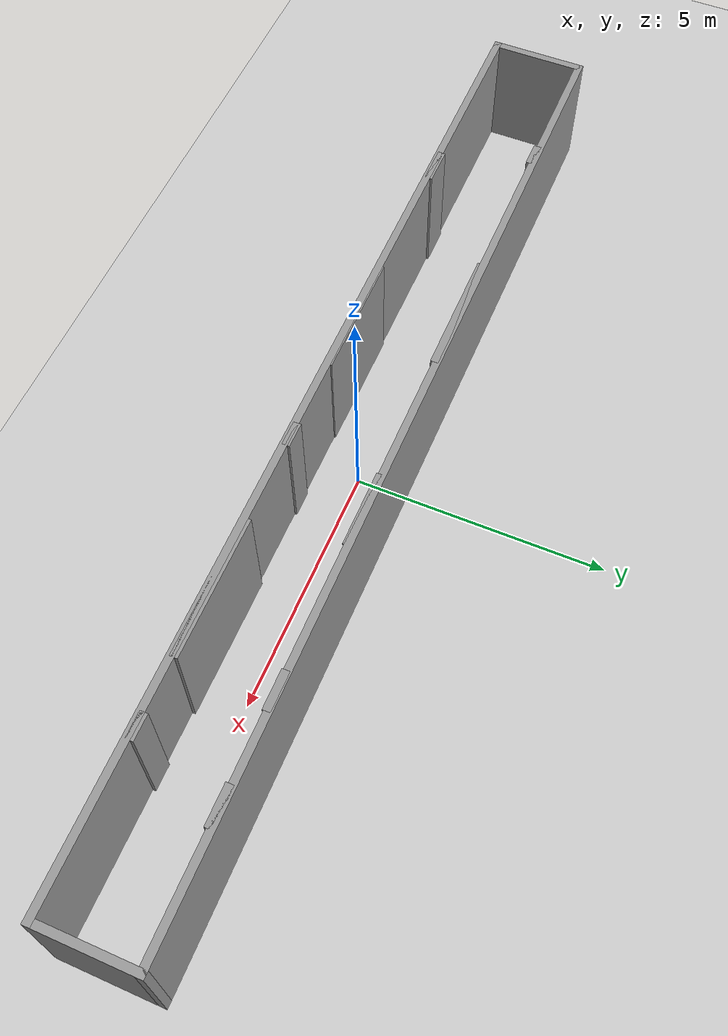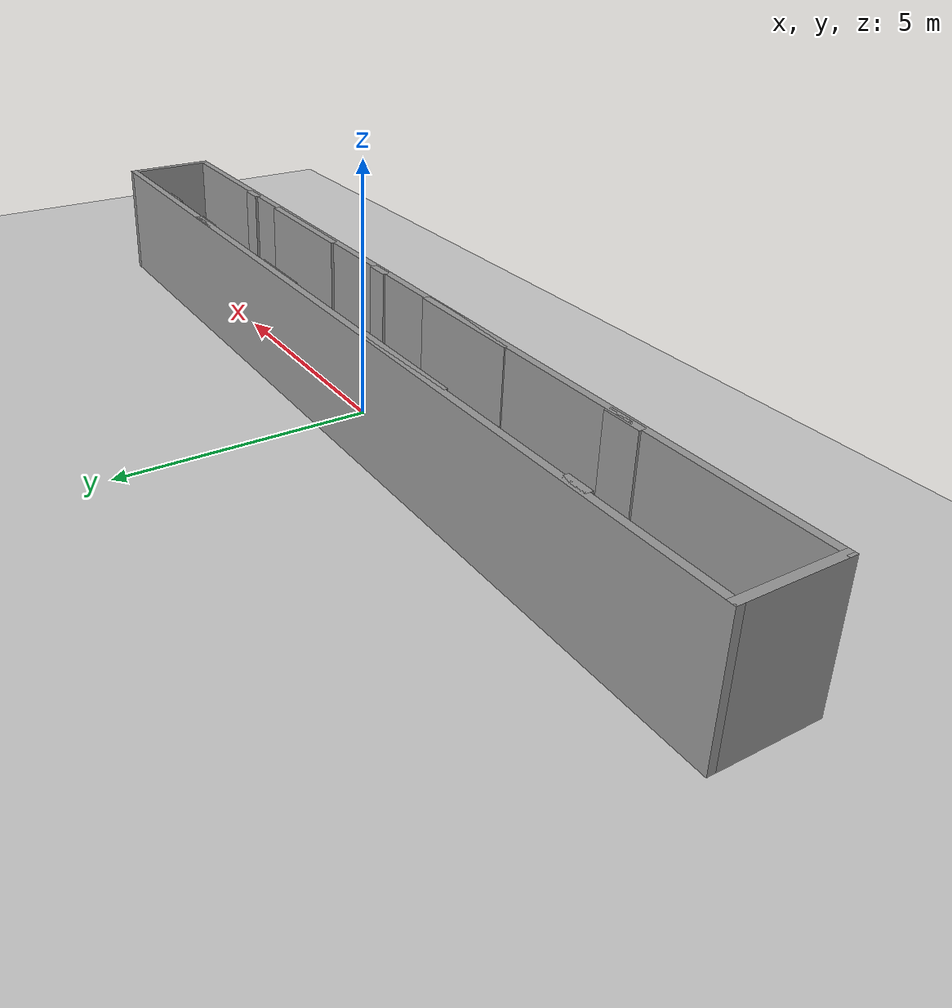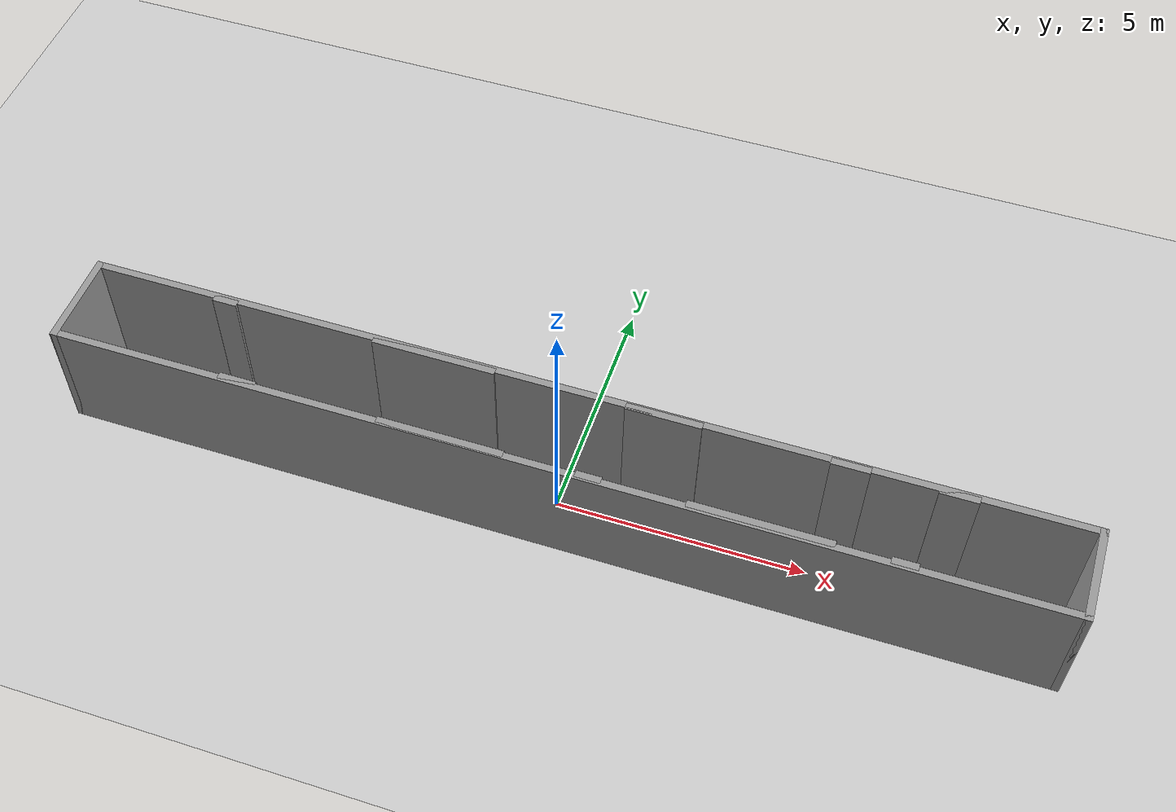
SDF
<sdf version="1.6">
 <world name="default">
  <light name="sun" type="directional">
   <pose>0 0 10 0 -0 0</pose>
   <diffuse>0.8 0.8 0.8 1</diffuse>
   <specular>0.2 0.2 0.2 1</specular>
   <attenuation>
    <range>1000</range>
    <constant>0.9</constant>
    <linear>0.01</linear>
    <quadratic>0.001</quadratic>
   </attenuation>
   <direction>-0.5 0.1 -0.9</direction>
  </light>
  <model name="ground_plane">
   <static>1</static>
   <link name="link">
    <collision name="collision">
     <geometry><plane><normal>0 0 1</normal><size>100 100</size></plane></geometry>
     <surface><friction><ode><mu>100</mu><mu2>50</mu2></ode></friction></surface>
    </collision>
    <visual name="visual">
     <cast_shadows>0</cast_shadows>
     <geometry><plane><normal>0 0 1</normal><size>100 100</size></plane></geometry>
     <material>
      <script><uri>file://media/materials/scripts/gazebo.material</uri><name>Gazebo/Grey</name></script>
     </material>
    </visual>
   </link>
  </model>
  <gravity>0 0 -9.8</gravity>
  <magnetic_field>6e-06 2.3e-05 -4.2e-05</magnetic_field>
  <atmosphere type="adiabatic"/>
  <physics name="default_physics" default="0" type="ode">
   <max_step_size>0.001</max_step_size>
   <real_time_factor>1</real_time_factor>
   <real_time_update_rate>1000</real_time_update_rate>
  </physics>
  <scene><ambient>0.4 0.4 0.4 1</ambient><background>0.7 0.7 0.7 1</background><shadows>1</shadows></scene>
  <spherical_coordinates>
   <surface_model>EARTH_WGS84</surface_model>
   <latitude_deg>0</latitude_deg>
   <longitude_deg>0</longitude_deg>
   <elevation>0</elevation>
   <heading_deg>0</heading_deg>
  </spherical_coordinates>
  <model name="lsq_w2m">
   <link name="Wall_27">
    <collision name="Wall_27_Collision">
     <geometry><box><size>2 0.15 2.5</size></box></geometry>
     <pose>0 0 1.25 0 -0 0</pose>
    </collision>
    <visual name="Wall_27_Visual">
     <pose>0 0 1.25 0 -0 0</pose>
     <geometry><box><size>2 0.15 2.5</size></box></geometry>
     <material>
      <script><uri>file://media/materials/scripts/gazebo.material</uri><name>Gazebo/Grey</name></script>
      <ambient>1 1 1 1</ambient>
     </material>
     <meta><layer>0</layer></meta>
    </visual>
    <pose>-9.925 0 0 0 -0 -1.5708</pose>
   </link>
   <link name="Wall_28">
    <collision name="Wall_28_Collision">
     <geometry><box><size>20 0.15 2.5</size></box></geometry>
     <pose>0 0 1.25 0 -0 0</pose>
    </collision>
    <visual name="Wall_28_Visual">
     <pose>0 0 1.25 0 -0 0</pose>
     <geometry><box><size>20 0.15 2.5</size></box></geometry>
     <material>
      <script><uri>file://media/materials/scripts/gazebo.material</uri><name>Gazebo/Grey</name></script>
      <ambient>1 1 1 1</ambient>
     </material>
     <meta><layer>0</layer></meta>
    </visual>
    <pose>0 -0.925 0 0 -0 0</pose>
   </link>
   <link name="Wall_29">
    <collision name="Wall_29_Collision">
     <geometry><box><size>2 0.15 2.5</size></box></geometry>
     <pose>0 0 1.25 0 -0 0</pose>
    </collision>
    <visual name="Wall_29_Visual">
     <pose>0 0 1.25 0 -0 0</pose>
     <geometry><box><size>2 0.15 2.5</size></box></geometry>
     <material>
      <script><uri>file://media/materials/scripts/gazebo.material</uri><name>Gazebo/Grey</name></script>
      <ambient>1 1 1 1</ambient>
     </material>
     <meta><layer>0</layer></meta>
    </visual>
    <pose>9.925 0 0 0 -0 1.5708</pose>
   </link>
   <link name="Wall_30">
    <collision name="Wall_30_Collision">
     <geometry><box><size>20 0.15 2.5</size></box></geometry>
     <pose>0 0 1.25 0 -0 0</pose>
    </collision>
    <visual name="Wall_30_Visual">
     <pose>0 0 1.25 0 -0 0</pose>
     <geometry><box><size>20 0.15 2.5</size></box></geometry>
     <material>
      <script><uri>file://media/materials/scripts/gazebo.material</uri><name>Gazebo/Grey</name></script>
      <ambient>1 1 1 1</ambient>
     </material>
     <meta><layer>0</layer></meta>
    </visual>
    <pose>0 0.925 0 0 -0 3.14159</pose>
   </link>
   <link name="Wall_32">
    <collision name="Wall_32_Collision">
     <geometry><box><size>0.5 0.15 2.5</size></box></geometry>
     <pose>0 0 1.25 0 -0 0</pose>
    </collision>
    <visual name="Wall_32_Visual">
     <pose>0 0 1.25 0 -0 0</pose>
     <geometry><box><size>0.5 0.15 2.5</size></box></geometry>
     <material>
      <script><uri>file://media/materials/scripts/gazebo.material</uri><name>Gazebo/Grey</name></script>
      <ambient>1 1 1 1</ambient>
     </material>
     <meta><layer>0</layer></meta>
    </visual>
    <pose>-7.14506 0.865376 0 0 -0 0</pose>
   </link>
   <link name="Wall_34">
    <collision name="Wall_34_Collision">
     <geometry><box><size>0.75 0.15 2.5</size></box></geometry>
     <pose>0 0 1.25 0 -0 0</pose>
    </collision>
    <visual name="Wall_34_Visual">
     <pose>0 0 1.25 0 -0 0</pose>
     <geometry><box><size>0.75 0.15 2.5</size></box></geometry>
     <material>
      <script><uri>file://media/materials/scripts/gazebo.material</uri><name>Gazebo/Grey</name></script>
      <ambient>1 1 1 1</ambient>
     </material>
     <meta><layer>0</layer></meta>
    </visual>
    <pose>-6.09989 -0.88138 0 0 -0 0</pose>
   </link>
   <link name="Wall_36">
    <collision name="Wall_36_Collision">
     <geometry><box><size>2.5 0.15 2.5</size></box></geometry>
     <pose>0 0 1.25 0 -0 0</pose>
    </collision>
    <visual name="Wall_36_Visual">
     <pose>0 0 1.25 0 -0 0</pose>
     <geometry><box><size>2.5 0.15 2.5</size></box></geometry>
     <material>
      <script><uri>file://media/materials/scripts/gazebo.material</uri><name>Gazebo/Grey</name></script>
      <ambient>1 1 1 1</ambient>
     </material>
     <meta><layer>0</layer></meta>
    </visual>
    <pose>-2.79191 0.880972 0 0 -0 0</pose>
   </link>
   <link name="Wall_38">
    <collision name="Wall_38_Collision">
     <geometry><box><size>2.5 0.15 2.5</size></box></geometry>
     <pose>0 0 1.25 0 -0 0</pose>
    </collision>
    <visual name="Wall_38_Visual">
     <pose>0 0 1.25 0 -0 0</pose>
     <geometry><box><size>2.5 0.15 2.5</size></box></geometry>
     <material>
      <script><uri>file://media/materials/scripts/gazebo.material</uri><name>Gazebo/Grey</name></script>
      <ambient>1 1 1 1</ambient>
     </material>
     <meta><layer>0</layer></meta>
    </visual>
    <pose>-1.99651 -0.896976 0 0 -0 0</pose>
   </link>
   <link name="Wall_40">
    <collision name="Wall_40_Collision">
     <geometry><box><size>1.5 0.15 2.5</size></box></geometry>
     <pose>0 0 1.25 0 -0 0</pose>
    </collision>
    <visual name="Wall_40_Visual">
     <pose>0 0 1.25 0 -0 0</pose>
     <geometry><box><size>1.5 0.15 2.5</size></box></geometry>
     <material>
      <script><uri>file://media/materials/scripts/gazebo.material</uri><name>Gazebo/Grey</name></script>
      <ambient>1 1 1 1</ambient>
     </material>
     <meta><layer>0</layer></meta>
    </visual>
    <pose>1.7924 0.896568 0 0 -0 0</pose>
   </link>
   <link name="Wall_42">
    <collision name="Wall_42_Collision">
     <geometry><box><size>2.75 0.15 2.5</size></box></geometry>
     <pose>0 0 1.25 0 -0 0</pose>
    </collision>
    <visual name="Wall_42_Visual">
     <pose>0 0 1.25 0 -0 0</pose>
     <geometry><box><size>2.75 0.15 2.5</size></box></geometry>
     <material>
      <script><uri>file://media/materials/scripts/gazebo.material</uri><name>Gazebo/Grey</name></script>
      <ambient>1 1 1 1</ambient>
     </material>
     <meta><layer>0</layer></meta>
    </visual>
    <pose>4.10177 -0.865784 0 0 -0 0</pose>
   </link>
   <link name="Wall_44">
    <collision name="Wall_44_Collision">
     <geometry><box><size>0.75 0.15 2.5</size></box></geometry>
     <pose>0 0 1.25 0 -0 0</pose>
    </collision>
    <visual name="Wall_44_Visual">
     <pose>0 0 1.25 0 -0 0</pose>
     <geometry><box><size>0.75 0.15 2.5</size></box></geometry>
     <material>
      <script><uri>file://media/materials/scripts/gazebo.material</uri><name>Gazebo/Grey</name></script>
      <ambient>1 1 1 1</ambient>
     </material>
     <meta><layer>0</layer></meta>
    </visual>
    <pose>5.3476 0.896568 0 0 -0 0</pose>
   </link>
   <link name="Wall_46">
    <collision name="Wall_46_Collision">
     <geometry><box><size>0.5 0.15 2.5</size></box></geometry>
     <pose>0 0 1.25 0 -0 0</pose>
    </collision>
    <visual name="Wall_46_Visual">
     <pose>0 0 1.25 0 -0 0</pose>
     <geometry><box><size>0.5 0.15 2.5</size></box></geometry>
     <material>
      <script><uri>file://media/materials/scripts/gazebo.material</uri><name>Gazebo/Grey</name></script>
      <ambient>1 1 1 1</ambient>
     </material>
     <meta><layer>0</layer></meta>
    </visual>
    <pose>6.71982 -0.865784 0 0 -0 0</pose>
   </link>
   <link name="Wall_48">
    <collision name="Wall_48_Collision">
     <geometry><box><size>0.75 0.15 2.5</size></box></geometry>
     <pose>0 0 1.25 0 -0 0</pose>
    </collision>
    <visual name="Wall_48_Visual">
     <pose>0 0 1.25 0 -0 0</pose>
     <geometry><box><size>0.75 0.15 2.5</size></box></geometry>
     <material>
      <script><uri>file://media/materials/scripts/gazebo.material</uri><name>Gazebo/Grey</name></script>
      <ambient>1 1 1 1</ambient>
     </material>
     <meta><layer>0</layer></meta>
    </visual>
    <pose>7.35213 0.880972 0 0 -0 3.14159</pose>
   </link>
   <link name="Wall_50">
    <collision name="Wall_50_Collision">
     <geometry><box><size>0.5 0.15 2.5</size></box></geometry>
     <pose>0 0 1.25 0 -0 0</pose>
    </collision>
    <visual name="Wall_50_Visual">
     <pose>0 0 1.25 0 -0 0</pose>
     <geometry><box><size>0.5 0.15 2.5</size></box></geometry>
     <material>
      <script><uri>file://media/materials/scripts/gazebo.material</uri><name>Gazebo/Grey</name></script>
      <ambient>1 1 1 1</ambient>
     </material>
     <meta><layer>0</layer></meta>
    </visual>
    <pose>0.886899 -0.88138 0 0 -0 0</pose>
   </link>
   <static>1</static>
  </model>
 </world>
</sdf>
